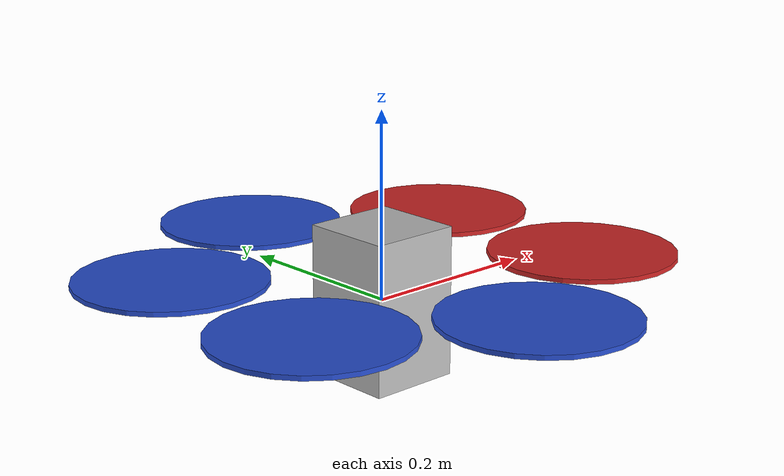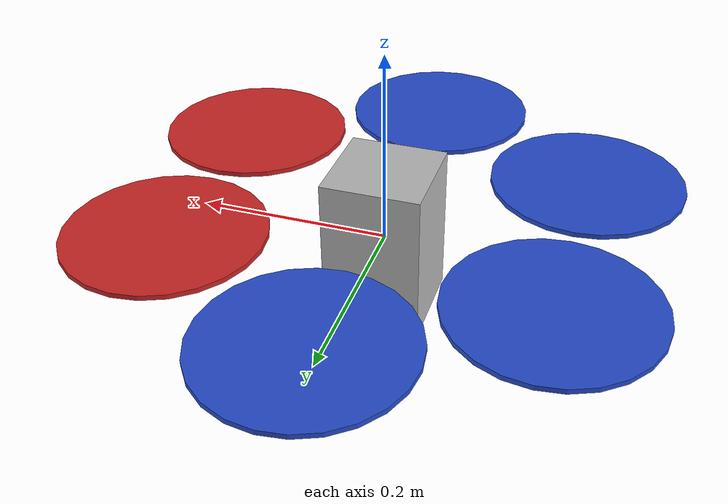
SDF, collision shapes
<sdf version='1.5'>
  <model name='firefly_stereo_camera'>
    <include>
      <uri>model://firefly</uri>
    </include>

    <include>
      <uri>model://stereo_camera_new</uri>
      <pose>0.1 0 0 0 0 0</pose>
    </include>
    <joint name="stereo_camera_new_joint" type="revolute">
      <child>stereo_camera_new::link</child>
      <parent>firefly::firefly/base_link</parent>
      <axis>
        <xyz>0 0 1</xyz>
        <limit>
          <upper>0</upper>
          <lower>0</lower>
        </limit>
      </axis>
    </joint>

  </model>
</sdf>

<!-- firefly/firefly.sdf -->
<sdf version='1.6'>
  <model name='firefly'>
    <link name='firefly/base_link'>
      <pose frame=''>0 0 0 0 -0 0</pose>
      <inertial>
        <pose frame=''>0 0 0 0 -0 0</pose>
        <mass>1.5</mass>
        <inertia>
          <ixx>0.0347563</ixx>
          <ixy>0</ixy>
          <ixz>0</ixz>
          <iyy>0.0458929</iyy>
          <iyz>0</iyz>
          <izz>0.0977</izz>
        </inertia>
      </inertial>
      <collision name='firefly/base_link_inertia_collision'>
        <pose frame=''>0 0 0 0 -0 0</pose>
        <geometry>
          <box>
            <size>0.1 0.1 0.16</size>
          </box>
        </geometry>
      </collision>
      <visual name='firefly/base_link_inertia_visual'>
        <pose frame=''>0 0 0 0 -0 0</pose>
        <geometry>
          <mesh>
            <scale>1 1 1</scale>
            <uri>model://rotors_description/meshes/firefly.dae</uri>
          </mesh>
        </geometry>
      </visual>
    </link>
    <link name='firefly/imu_link'>
      <pose frame=''>0 0 0 0 -0 0</pose>
      <inertial>
        <pose frame=''>0 0 0 0 -0 0</pose>
        <mass>0.015</mass>
        <inertia>
          <ixx>1e-05</ixx>
          <ixy>0</ixy>
          <ixz>0</ixz>
          <iyy>1e-05</iyy>
          <iyz>0</iyz>
          <izz>1e-05</izz>
        </inertia>
      </inertial>
    </link>
    <joint name='firefly/imu_joint' type='revolute'>
      <child>firefly/imu_link</child>
      <parent>firefly/base_link</parent>
      <axis>
        <xyz>1 0 0</xyz>
        <limit>
          <lower>0</lower>
          <upper>0</upper>
          <effort>0</effort>
          <velocity>0</velocity>
        </limit>
        <dynamics>
          <spring_reference>0</spring_reference>
          <spring_stiffness>0</spring_stiffness>
        </dynamics>
        <use_parent_model_frame>1</use_parent_model_frame>
      </axis>
    </joint>
    <link name='firefly/odometry_sensor1_link'>
      <pose frame=''>0 0 0 0 -0 0</pose>
      <inertial>
        <pose frame=''>0 0 0 0 -0 0</pose>
        <mass>1e-05</mass>
        <inertia>
          <ixx>1e-05</ixx>
          <ixy>0</ixy>
          <ixz>0</ixz>
          <iyy>1e-05</iyy>
          <iyz>0</iyz>
          <izz>1e-05</izz>
        </inertia>
      </inertial>
    </link>
    <joint name='firefly/odometry_sensor1_joint' type='revolute'>
      <child>firefly/odometry_sensor1_link</child>
      <parent>firefly/base_link</parent>
      <axis>
        <xyz>1 0 0</xyz>
        <limit>
          <lower>0</lower>
          <upper>0</upper>
          <effort>0</effort>
          <velocity>0</velocity>
        </limit>
        <dynamics>
          <spring_reference>0</spring_reference>
          <spring_stiffness>0</spring_stiffness>
        </dynamics>
        <use_parent_model_frame>1</use_parent_model_frame>
      </axis>
    </joint>
    <link name='firefly/rotor_0'>
      <pose frame=''>0.186195 0.1075 0.037 0 -0 0</pose>
      <inertial>
        <pose frame=''>0 0 0 0 -0 0</pose>
        <mass>0.005</mass>
        <inertia>
          <ixx>9.75e-07</ixx>
          <ixy>0</ixy>
          <ixz>0</ixz>
          <iyy>4.17041e-05</iyy>
          <iyz>0</iyz>
          <izz>4.26041e-05</izz>
        </inertia>
      </inertial>
      <collision name='firefly/rotor_0_collision'>
        <pose frame=''>0 0 0 0 -0 0</pose>
        <geometry>
          <cylinder>
            <length>0.005</length>
            <radius>0.1</radius>
          </cylinder>
        </geometry>
        <surface>
          <contact>
            <ode/>
          </contact>
          <friction>
            <ode/>
          </friction>
        </surface>
      </collision>
      <visual name='firefly/rotor_0_visual'>
        <pose frame=''>0 0 0 0 -0 0</pose>
        <geometry>
          <mesh>
            <scale>0.1 0.1 0.1</scale>
            <uri>model://rotors_description/meshes/propeller_ccw.dae</uri>
          </mesh>
        </geometry>
        <material>
          <script>
            <name>Gazebo/Red</name>
            <uri>file://media/materials/scripts/gazebo.material</uri>
          </script>
        </material>
      </visual>
      <gravity>1</gravity>
      <velocity_decay/>
      <self_collide>0</self_collide>
    </link>
    <joint name='firefly/rotor_0_joint' type='revolute'>
      <child>firefly/rotor_0</child>
      <parent>firefly/base_link</parent>
      <axis>
        <xyz>0 0 1</xyz>
        <limit>
          <lower>-1e+16</lower>
          <upper>1e+16</upper>
        </limit>
        <dynamics>
          <spring_reference>0</spring_reference>
          <spring_stiffness>0</spring_stiffness>
        </dynamics>
        <use_parent_model_frame>1</use_parent_model_frame>
      </axis>
    </joint>
    <link name='firefly/rotor_1'>
      <pose frame=''>0 0.215 0.037 0 -0 0</pose>
      <inertial>
        <pose frame=''>0 0 0 0 -0 0</pose>
        <mass>0.005</mass>
        <inertia>
          <ixx>9.75e-07</ixx>
          <ixy>0</ixy>
          <ixz>0</ixz>
          <iyy>4.17041e-05</iyy>
          <iyz>0</iyz>
          <izz>4.26041e-05</izz>
        </inertia>
      </inertial>
      <collision name='firefly/rotor_1_collision'>
        <pose frame=''>0 0 0 0 -0 0</pose>
        <geometry>
          <cylinder>
            <length>0.005</length>
            <radius>0.1</radius>
          </cylinder>
        </geometry>
        <surface>
          <contact>
            <ode/>
          </contact>
          <friction>
            <ode/>
          </friction>
        </surface>
      </collision>
      <visual name='firefly/rotor_1_visual'>
        <pose frame=''>0 0 0 0 -0 0</pose>
        <geometry>
          <mesh>
            <scale>0.1 0.1 0.1</scale>
            <uri>model://rotors_description/meshes/propeller_cw.dae</uri>
          </mesh>
        </geometry>
        <material>
          <script>
            <name>Gazebo/Blue</name>
            <uri>file://media/materials/scripts/gazebo.material</uri>
          </script>
        </material>
      </visual>
      <gravity>1</gravity>
      <velocity_decay/>
      <self_collide>0</self_collide>
    </link>
    <joint name='firefly/rotor_1_joint' type='revolute'>
      <child>firefly/rotor_1</child>
      <parent>firefly/base_link</parent>
      <axis>
        <xyz>0 0 1</xyz>
        <limit>
          <lower>-1e+16</lower>
          <upper>1e+16</upper>
        </limit>
        <dynamics>
          <spring_reference>0</spring_reference>
          <spring_stiffness>0</spring_stiffness>
        </dynamics>
        <use_parent_model_frame>1</use_parent_model_frame>
      </axis>
    </joint>
    <link name='firefly/rotor_2'>
      <pose frame=''>-0.186195 0.1075 0.037 0 -0 0</pose>
      <inertial>
        <pose frame=''>0 0 0 0 -0 0</pose>
        <mass>0.005</mass>
        <inertia>
          <ixx>9.75e-07</ixx>
          <ixy>0</ixy>
          <ixz>0</ixz>
          <iyy>4.17041e-05</iyy>
          <iyz>0</iyz>
          <izz>4.26041e-05</izz>
        </inertia>
      </inertial>
      <collision name='firefly/rotor_2_collision'>
        <pose frame=''>0 0 0 0 -0 0</pose>
        <geometry>
          <cylinder>
            <length>0.005</length>
            <radius>0.1</radius>
          </cylinder>
        </geometry>
        <surface>
          <contact>
            <ode/>
          </contact>
          <friction>
            <ode/>
          </friction>
        </surface>
      </collision>
      <visual name='firefly/rotor_2_visual'>
        <pose frame=''>0 0 0 0 -0 0</pose>
        <geometry>
          <mesh>
            <scale>0.1 0.1 0.1</scale>
            <uri>model://rotors_description/meshes/propeller_ccw.dae</uri>
          </mesh>
        </geometry>
        <material>
          <script>
            <name>Gazebo/Blue</name>
            <uri>file://media/materials/scripts/gazebo.material</uri>
          </script>
        </material>
      </visual>
      <gravity>1</gravity>
      <velocity_decay/>
      <self_collide>0</self_collide>
    </link>
    <joint name='firefly/rotor_2_joint' type='revolute'>
      <child>firefly/rotor_2</child>
      <parent>firefly/base_link</parent>
      <axis>
        <xyz>0 0 1</xyz>
        <limit>
          <lower>-1e+16</lower>
          <upper>1e+16</upper>
        </limit>
        <dynamics>
          <spring_reference>0</spring_reference>
          <spring_stiffness>0</spring_stiffness>
        </dynamics>
        <use_parent_model_frame>1</use_parent_model_frame>
      </axis>
    </joint>
    <link name='firefly/rotor_3'>
      <pose frame=''>-0.186195 -0.1075 0.037 0 -0 0</pose>
      <inertial>
        <pose frame=''>0 0 0 0 -0 0</pose>
        <mass>0.005</mass>
        <inertia>
          <ixx>9.75e-07</ixx>
          <ixy>0</ixy>
          <ixz>0</ixz>
          <iyy>4.17041e-05</iyy>
          <iyz>0</iyz>
          <izz>4.26041e-05</izz>
        </inertia>
      </inertial>
      <collision name='firefly/rotor_3_collision'>
        <pose frame=''>0 0 0 0 -0 0</pose>
        <geometry>
          <cylinder>
            <length>0.005</length>
            <radius>0.1</radius>
          </cylinder>
        </geometry>
        <surface>
          <contact>
            <ode/>
          </contact>
          <friction>
            <ode/>
          </friction>
        </surface>
      </collision>
      <visual name='firefly/rotor_3_visual'>
        <pose frame=''>0 0 0 0 -0 0</pose>
        <geometry>
          <mesh>
            <scale>0.1 0.1 0.1</scale>
            <uri>model://rotors_description/meshes/propeller_cw.dae</uri>
          </mesh>
        </geometry>
        <material>
          <script>
            <name>Gazebo/Blue</name>
            <uri>file://media/materials/scripts/gazebo.material</uri>
          </script>
        </material>
      </visual>
      <gravity>1</gravity>
      <velocity_decay/>
      <self_collide>0</self_collide>
    </link>
    <joint name='firefly/rotor_3_joint' type='revolute'>
      <child>firefly/rotor_3</child>
      <parent>firefly/base_link</parent>
      <axis>
        <xyz>0 0 1</xyz>
        <limit>
          <lower>-1e+16</lower>
          <upper>1e+16</upper>
        </limit>
        <dynamics>
          <spring_reference>0</spring_reference>
          <spring_stiffness>0</spring_stiffness>
        </dynamics>
        <use_parent_model_frame>1</use_parent_model_frame>
      </axis>
    </joint>
    <link name='firefly/rotor_4'>
      <pose frame=''>0 -0.215 0.037 0 -0 0</pose>
      <inertial>
        <pose frame=''>0 0 0 0 -0 0</pose>
        <mass>0.005</mass>
        <inertia>
          <ixx>9.75e-07</ixx>
          <ixy>0</ixy>
          <ixz>0</ixz>
          <iyy>4.17041e-05</iyy>
          <iyz>0</iyz>
          <izz>4.26041e-05</izz>
        </inertia>
      </inertial>
      <collision name='firefly/rotor_4_collision'>
        <pose frame=''>0 0 0 0 -0 0</pose>
        <geometry>
          <cylinder>
            <length>0.005</length>
            <radius>0.1</radius>
          </cylinder>
        </geometry>
        <surface>
          <contact>
            <ode/>
          </contact>
          <friction>
            <ode/>
          </friction>
        </surface>
      </collision>
      <visual name='firefly/rotor_4_visual'>
        <pose frame=''>0 0 0 0 -0 0</pose>
        <geometry>
          <mesh>
            <scale>0.1 0.1 0.1</scale>
            <uri>model://rotors_description/meshes/propeller_ccw.dae</uri>
          </mesh>
        </geometry>
        <material>
          <script>
            <name>Gazebo/Blue</name>
            <uri>file://media/materials/scripts/gazebo.material</uri>
          </script>
        </material>
      </visual>
      <gravity>1</gravity>
      <velocity_decay/>
      <self_collide>0</self_collide>
    </link>
    <joint name='firefly/rotor_4_joint' type='revolute'>
      <child>firefly/rotor_4</child>
      <parent>firefly/base_link</parent>
      <axis>
        <xyz>0 0 1</xyz>
        <limit>
          <lower>-1e+16</lower>
          <upper>1e+16</upper>
        </limit>
        <dynamics>
          <spring_reference>0</spring_reference>
          <spring_stiffness>0</spring_stiffness>
        </dynamics>
        <use_parent_model_frame>1</use_parent_model_frame>
      </axis>
    </joint>
    <link name='firefly/rotor_5'>
      <pose frame=''>0.186195 -0.1075 0.037 0 -0 0</pose>
      <inertial>
        <pose frame=''>0 0 0 0 -0 0</pose>
        <mass>0.005</mass>
        <inertia>
          <ixx>9.75e-07</ixx>
          <ixy>0</ixy>
          <ixz>0</ixz>
          <iyy>4.17041e-05</iyy>
          <iyz>0</iyz>
          <izz>4.26041e-05</izz>
        </inertia>
      </inertial>
      <collision name='firefly/rotor_5_collision'>
        <pose frame=''>0 0 0 0 -0 0</pose>
        <geometry>
          <cylinder>
            <length>0.005</length>
            <radius>0.1</radius>
          </cylinder>
        </geometry>
        <surface>
          <contact>
            <ode/>
          </contact>
          <friction>
            <ode/>
          </friction>
        </surface>
      </collision>
      <visual name='firefly/rotor_5_visual'>
        <pose frame=''>0 0 0 0 -0 0</pose>
        <geometry>
          <mesh>
            <scale>0.1 0.1 0.1</scale>
            <uri>model://rotors_description/meshes/propeller_cw.dae</uri>
          </mesh>
        </geometry>
        <material>
          <script>
            <name>Gazebo/Red</name>
            <uri>file://media/materials/scripts/gazebo.material</uri>
          </script>
        </material>
      </visual>
      <gravity>1</gravity>
      <velocity_decay/>
      <self_collide>0</self_collide>
    </link>
    <joint name='firefly/rotor_5_joint' type='revolute'>
      <child>firefly/rotor_5</child>
      <parent>firefly/base_link</parent>
      <axis>
        <xyz>0 0 1</xyz>
        <limit>
          <lower>-1e+16</lower>
          <upper>1e+16</upper>
        </limit>
        <dynamics>
          <spring_reference>0</spring_reference>
          <spring_stiffness>0</spring_stiffness>
        </dynamics>
        <use_parent_model_frame>1</use_parent_model_frame>
      </axis>
    </joint>
    <plugin name='multirotor_base_plugin' filename='librotors_gazebo_multirotor_base_plugin.so'>
      <robotNamespace>firefly</robotNamespace>
      <linkName>firefly/base_link</linkName>
      <rotorVelocitySlowdownSim>10</rotorVelocitySlowdownSim>
    </plugin>
    <plugin name='firefly_front_left_motor_model' filename='librotors_gazebo_motor_model.so'>
      <robotNamespace>firefly</robotNamespace>
      <jointName>firefly/rotor_0_joint</jointName>
      <linkName>firefly/rotor_0</linkName>
      <turningDirection>ccw</turningDirection>
      <timeConstantUp>0.0125</timeConstantUp>
      <timeConstantDown>0.025</timeConstantDown>
      <maxRotVelocity>838</maxRotVelocity>
      <motorConstant>8.54858e-06</motorConstant>
      <momentConstant>0.016</momentConstant>
      <commandSubTopic>gazebo/command/motor_speed</commandSubTopic>
      <motorNumber>0</motorNumber>
      <rotorDragCoefficient>8.06428e-05</rotorDragCoefficient>
      <rollingMomentCoefficient>1e-06</rollingMomentCoefficient>
      <motorSpeedPubTopic>motor_speed/0</motorSpeedPubTopic>
      <rotorVelocitySlowdownSim>10</rotorVelocitySlowdownSim>
    </plugin>
    <plugin name='firefly_left_motor_model' filename='librotors_gazebo_motor_model.so'>
      <robotNamespace>firefly</robotNamespace>
      <jointName>firefly/rotor_1_joint</jointName>
      <linkName>firefly/rotor_1</linkName>
      <turningDirection>cw</turningDirection>
      <timeConstantUp>0.0125</timeConstantUp>
      <timeConstantDown>0.025</timeConstantDown>
      <maxRotVelocity>838</maxRotVelocity>
      <motorConstant>8.54858e-06</motorConstant>
      <momentConstant>0.016</momentConstant>
      <commandSubTopic>gazebo/command/motor_speed</commandSubTopic>
      <motorNumber>1</motorNumber>
      <rotorDragCoefficient>8.06428e-05</rotorDragCoefficient>
      <rollingMomentCoefficient>1e-06</rollingMomentCoefficient>
      <motorSpeedPubTopic>motor_speed/1</motorSpeedPubTopic>
      <rotorVelocitySlowdownSim>10</rotorVelocitySlowdownSim>
    </plugin>
    <plugin name='firefly_back_left_motor_model' filename='librotors_gazebo_motor_model.so'>
      <robotNamespace>firefly</robotNamespace>
      <jointName>firefly/rotor_2_joint</jointName>
      <linkName>firefly/rotor_2</linkName>
      <turningDirection>ccw</turningDirection>
      <timeConstantUp>0.0125</timeConstantUp>
      <timeConstantDown>0.025</timeConstantDown>
      <maxRotVelocity>838</maxRotVelocity>
      <motorConstant>8.54858e-06</motorConstant>
      <momentConstant>0.016</momentConstant>
      <commandSubTopic>gazebo/command/motor_speed</commandSubTopic>
      <motorNumber>2</motorNumber>
      <rotorDragCoefficient>8.06428e-05</rotorDragCoefficient>
      <rollingMomentCoefficient>1e-06</rollingMomentCoefficient>
      <motorSpeedPubTopic>motor_speed/2</motorSpeedPubTopic>
      <rotorVelocitySlowdownSim>10</rotorVelocitySlowdownSim>
    </plugin>
    <plugin name='firefly_back_right_motor_model' filename='librotors_gazebo_motor_model.so'>
      <robotNamespace>firefly</robotNamespace>
      <jointName>firefly/rotor_3_joint</jointName>
      <linkName>firefly/rotor_3</linkName>
      <turningDirection>cw</turningDirection>
      <timeConstantUp>0.0125</timeConstantUp>
      <timeConstantDown>0.025</timeConstantDown>
      <maxRotVelocity>838</maxRotVelocity>
      <motorConstant>8.54858e-06</motorConstant>
      <momentConstant>0.016</momentConstant>
      <commandSubTopic>gazebo/command/motor_speed</commandSubTopic>
      <motorNumber>3</motorNumber>
      <rotorDragCoefficient>8.06428e-05</rotorDragCoefficient>
      <rollingMomentCoefficient>1e-06</rollingMomentCoefficient>
      <motorSpeedPubTopic>motor_speed/3</motorSpeedPubTopic>
      <rotorVelocitySlowdownSim>10</rotorVelocitySlowdownSim>
    </plugin>
    <plugin name='firefly_right_motor_model' filename='librotors_gazebo_motor_model.so'>
      <robotNamespace>firefly</robotNamespace>
      <jointName>firefly/rotor_4_joint</jointName>
      <linkName>firefly/rotor_4</linkName>
      <turningDirection>ccw</turningDirection>
      <timeConstantUp>0.0125</timeConstantUp>
      <timeConstantDown>0.025</timeConstantDown>
      <maxRotVelocity>838</maxRotVelocity>
      <motorConstant>8.54858e-06</motorConstant>
      <momentConstant>0.016</momentConstant>
      <commandSubTopic>gazebo/command/motor_speed</commandSubTopic>
      <motorNumber>4</motorNumber>
      <rotorDragCoefficient>8.06428e-05</rotorDragCoefficient>
      <rollingMomentCoefficient>1e-06</rollingMomentCoefficient>
      <motorSpeedPubTopic>motor_speed/4</motorSpeedPubTopic>
      <rotorVelocitySlowdownSim>10</rotorVelocitySlowdownSim>
    </plugin>
    <plugin name='firefly_front_right_motor_model' filename='librotors_gazebo_motor_model.so'>
      <robotNamespace>firefly</robotNamespace>
      <jointName>firefly/rotor_5_joint</jointName>
      <linkName>firefly/rotor_5</linkName>
      <turningDirection>cw</turningDirection>
      <timeConstantUp>0.0125</timeConstantUp>
      <timeConstantDown>0.025</timeConstantDown>
      <maxRotVelocity>838</maxRotVelocity>
      <motorConstant>8.54858e-06</motorConstant>
      <momentConstant>0.016</momentConstant>
      <commandSubTopic>gazebo/command/motor_speed</commandSubTopic>
      <motorNumber>5</motorNumber>
      <rotorDragCoefficient>8.06428e-05</rotorDragCoefficient>
      <rollingMomentCoefficient>1e-06</rollingMomentCoefficient>
      <motorSpeedPubTopic>motor_speed/5</motorSpeedPubTopic>
      <rotorVelocitySlowdownSim>10</rotorVelocitySlowdownSim>
    </plugin>
    <plugin name='controller_interface' filename='librotors_gazebo_controller_interface.so'>
      <robotNamespace>firefly</robotNamespace>
      <commandAttitudeThrustSubTopic>command/attitude</commandAttitudeThrustSubTopic>
      <commandRateThrustSubTopic>command/rate</commandRateThrustSubTopic>
      <commandMotorSpeedSubTopic>command/motor_speed</commandMotorSpeedSubTopic>
      <imuSubTopic>imu</imuSubTopic>
      <motorSpeedCommandPubTopic>gazebo/command/motor_speed</motorSpeedCommandPubTopic>
    </plugin>
    <plugin name='mavlink_interface' filename='librotors_gazebo_mavlink_interface.so'>
      <robotNamespace>firefly</robotNamespace>
      <mavlinkControlSubTopic>/mavlink/from</mavlinkControlSubTopic>
      <imuSubTopic>imu</imuSubTopic>
      <mavlinkHilSensorPubTopic>/mavlink/to</mavlinkHilSensorPubTopic>
      <motorSpeedsPubTopic>gazebo/command/motor_speed</motorSpeedsPubTopic>
      <gpsUpdateFreq>5.0</gpsUpdateFreq>
      <rotorCount>6</rotorCount>
      <referenceMagNorth>0.21475</referenceMagNorth>
      <referenceMagEast>0.00797</referenceMagEast>
      <referenceMagDown>0.42817</referenceMagDown>
      <referenceLatitude>47.3667</referenceLatitude>
      <referenceLongitude>8.55</referenceLongitude>
      <referenceAltitude>500.0</referenceAltitude>
    </plugin>
    <plugin name='rotors_gazebo_imu_plugin' filename='librotors_gazebo_imu_plugin.so'>
      <robotNamespace>firefly</robotNamespace>
      <linkName>firefly/imu_link</linkName>
      <imuTopic>imu</imuTopic>
      <gyroscopeNoiseDensity>0.0003394</gyroscopeNoiseDensity>
      <gyroscopeRandomWalk>3.8785e-05</gyroscopeRandomWalk>
      <gyroscopeBiasCorrelationTime>1000.0</gyroscopeBiasCorrelationTime>
      <gyroscopeTurnOnBiasSigma>0.0087</gyroscopeTurnOnBiasSigma>
      <accelerometerNoiseDensity>0.004</accelerometerNoiseDensity>
      <accelerometerRandomWalk>0.006</accelerometerRandomWalk>
      <accelerometerBiasCorrelationTime>300.0</accelerometerBiasCorrelationTime>
      <accelerometerTurnOnBiasSigma>0.196</accelerometerTurnOnBiasSigma>
    </plugin>
    <static>0</static>
    <plugin name='odometry_sensor1' filename='librotors_gazebo_odometry_plugin.so'>
      <linkName>firefly/odometry_sensor1_link</linkName>
      <robotNamespace>firefly</robotNamespace>
      <poseTopic>odometry_sensor1/pose</poseTopic>
      <poseWithCovarianceTopic>odometry_sensor1/pose_with_covariance</poseWithCovarianceTopic>
      <positionTopic>odometry_sensor1/position</positionTopic>
      <transformTopic>odometry_sensor1/transform</transformTopic>
      <odometryTopic>odometry_sensor1/odometry</odometryTopic>
      <parentFrameId>world</parentFrameId>
      <childFrameId>firefly/odometry_sensor1</childFrameId>
      <measurementDivisor>1</measurementDivisor>
      <measurementDelay>0</measurementDelay>
      <unknownDelay>0.0</unknownDelay>
      <noiseNormalPosition>0 0 0</noiseNormalPosition>
      <noiseNormalQuaternion>0 0 0</noiseNormalQuaternion>
      <noiseNormalLinearVelocity>0 0 0</noiseNormalLinearVelocity>
      <noiseNormalAngularVelocity>0 0 0</noiseNormalAngularVelocity>
      <noiseUniformPosition>0 0 0</noiseUniformPosition>
      <noiseUniformQuaternion>0 0 0</noiseUniformQuaternion>
      <noiseUniformLinearVelocity>0 0 0</noiseUniformLinearVelocity>
      <noiseUniformAngularVelocity>0 0 0</noiseUniformAngularVelocity>
    </plugin>
  </model>
</sdf>

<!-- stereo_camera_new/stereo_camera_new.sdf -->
<sdf version="1.5">
  <model name="stereo_camera_new">
    <pose>0 0 0.035 0 0 0</pose>
    <link name="link">
      <inertial>
        <pose>0.01 0.025 0.025 0 0 0</pose>
        <mass>0.01</mass>
        <inertia>
          <ixx>4.15e-6</ixx>
          <ixy>0</ixy>
          <ixz>0</ixz>
          <iyy>2.407e-6</iyy>
          <iyz>0</iyz>
          <izz>2.407e-6</izz>
        </inertia>
      </inertial>
      <visual name="visual">
        <pose>0 0 0 0 1.57 0</pose>
        <geometry>
          <mesh>
            <uri>model://stereo_camera_new/meshes/hokuyo.dae</uri>
          </mesh>
        </geometry>
      </visual>
      <sensor type="multicamera" name="stereo_camera">
        <update_rate>7.0</update_rate>
        <camera name="left">
          <pose>0.1 0.035 0 0 0 0</pose>
          <horizontal_fov>1.3962634</horizontal_fov>
          <image>
            <width>400</width>
            <height>400</height>
            <format>R8G8B8</format>
          </image>
          <clip>
            <near>0.02</near>
            <far>10</far>
          </clip>
          <noise>
            <type>gaussian</type>
            <mean>0.0</mean>
            <stddev>0.007</stddev>
          </noise>
        </camera>
        <camera name="right">
          <pose>0.1 -0.035 0 0 0 0</pose>
          <horizontal_fov>1.3962634</horizontal_fov>
          <image>
            <width>400</width>
            <height>400</height>
            <format>R8G8B8</format>
          </image>
          <clip>
            <near>0.02</near>
            <far>10</far>
          </clip>
          <noise>
            <type>gaussian</type>
            <mean>0.0</mean>
            <stddev>0.007</stddev>
          </noise>
        </camera>
        <plugin name="stereo_camera_controller" filename="libgazebo_ros_multicamera.so">
          <alwaysOn>true</alwaysOn>
          <updateRate>0.0</updateRate>
          <cameraName>stereo</cameraName>
          <imageTopicName>image_raw</imageTopicName>
          <cameraInfoTopicName>camera_info</cameraInfoTopicName>
          <frameName>camera_link</frameName>
          <hackBaseline>0.07</hackBaseline>
          <distortionK1>0.0</distortionK1>
          <distortionK2>0.0</distortionK2>
          <distortionK3>0.0</distortionK3>
          <distortionT1>0.0</distortionT1>
          <distortionT2>0.0</distortionT2>
        </plugin>
      </sensor>
    </link>
  </model>
</sdf>
